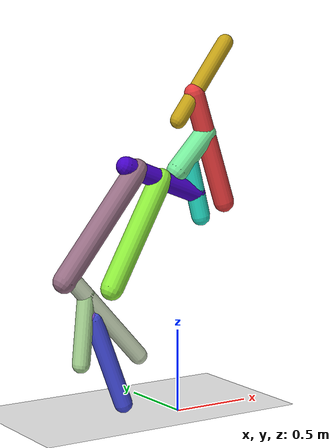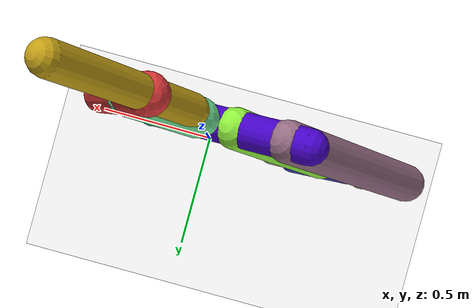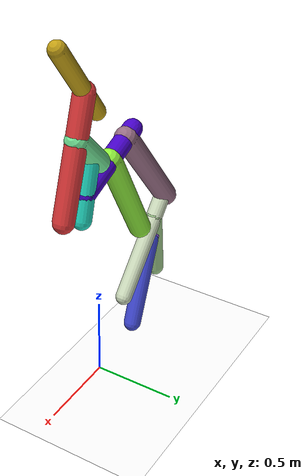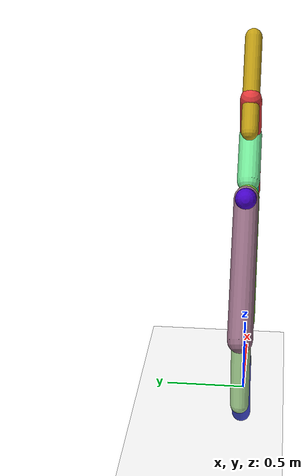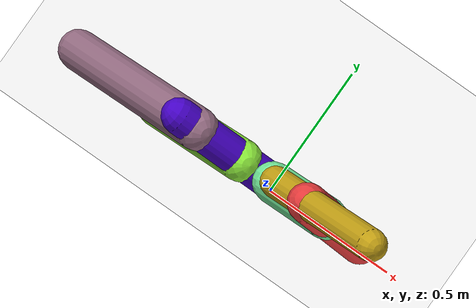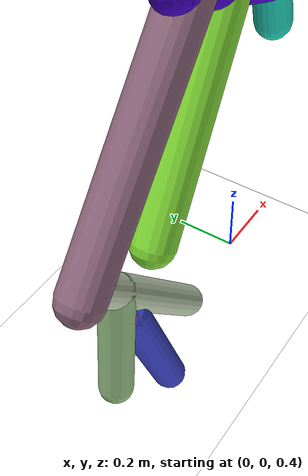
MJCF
<mujoco model="morphology">
  <option timestep="0.01"/>
  <default>
    <default class="/"/>
    <default class="0/"/>
    <default class="0/1/"/>
    <default class="0/1/2/"/>
    <default class="0/1/2/3/"/>
    <default class="0/1/2/3/4/"/>
    <default class="0/1/2/3/4/5/"/>
    <default class="0/1/2/3/4/6/"/>
    <default class="0/1/2/3/4/6/7/"/>
    <default class="0/1/2/3/4/6/7/8/"/>
    <default class="0/1/2/3/4/6/7/8/9/"/>
    <default class="0/1/2/3/4/6/7/8/9/10/"/>
  </default>
  <asset>
    <texture name="texplane" type="2d" builtin="checker" rgb1="0.10000000000000001 0.20000000000000001 0.29999999999999999" rgb2="0.20000000000000001 0.29999999999999999 0.40000000000000002" width="300" height="300"/>
    <material name="MatPlane" class="/" texture="texplane" texrepeat="20 20" specular="1" shininess="1" reflectance="0.5"/>
  </asset>
  <worldbody>
    <light name="//unnamed_light_0" class="/" directional="true" pos="0 0 1.5" dir="0 0 -1.3" cutoff="100" exponent="1" diffuse="1 1 1" specular="0.10000000000000001 0.10000000000000001 0.10000000000000001"/>
    <geom name="ground" class="/" type="plane" size="15 15 0.5" material="MatPlane" rgba="1 1 1 1"/>
    <site name="body" class="/" size="9.9999999999999995e-07 9.9999999999999995e-07 9.9999999999999995e-07" pos="0 0 1.7702007055282594"/>
    <body pos="0 0 1.7702007055282594" name="0/">
      <joint name="0/rootx/" class="/" type="slide" axis="1 0 0" limited="false" stiffness="0" armature="0" damping="0"/>
      <joint name="0/rootz/" class="/" type="slide" axis="0 0 1" limited="false" stiffness="0" armature="0" damping="0"/>
      <joint name="0/rooty/" class="/" type="hinge" axis="0 1 0" limited="false" stiffness="0" armature="0" damping="0"/>
      <geom name="0/geom" class="0/" type="capsule" contype="1" conaffinity="1" condim="3" size="0.049760105491296794" rgba="0.76395265650876476 0.62478649806144615 0.079439515522557014 1" friction="0.59999999999999998 0.10000000000000001 0.10000000000000001" fromto="0 0 0 0.33490888481965642 0 0.45470466588194913"/>
      <site name="0/end0" class="0/" size="0.0050000000000000001" pos="0.33490888481965642 0 0.45470466588194913"/>
      <site name="0/attach1" class="0/" size="9.9999999999999995e-07 9.9999999999999995e-07 9.9999999999999995e-07" pos="0.11326453954722956 0 0.15377888418466076"/>
      <body pos="0.11326453954722956 0 0.15377888418466076" name="0/1/">
        <joint name="0/1/joint/" class="0/" type="hinge" axis="0 1 0" limited="true" range="-30.345234659290938 30.345234659290938"/>
        <geom name="0/1/geom" class="0/1/" type="capsule" contype="1" conaffinity="1" condim="3" size="0.062177679534595243" rgba="0.89301078395328271 0.22906135838136799 0.23311906517545156 1" friction="0.59999999999999998 0.10000000000000001 0.10000000000000001" fromto="0 0 0 0.2209425893441519 0 -0.66403291622570504"/>
        <site name="0/1/end1" class="0/1/" size="0.0050000000000000001" pos="0.2209425893441519 0 -0.66403291622570504"/>
        <site name="0/1/attach2" class="0/1/" size="9.9999999999999995e-07 9.9999999999999995e-07 9.9999999999999995e-07" pos="0.080530485192739781 0 -0.24203071524752806"/>
        <body pos="0.080530485192739781 0 -0.24203071524752806" name="0/1/2/">
          <joint name="0/1/2/joint/" class="0/1/" type="hinge" axis="0 1 0" limited="true" range="-55.068405468197739 55.068405468197739"/>
          <geom name="0/1/2/geom" class="0/1/2/" type="capsule" contype="1" conaffinity="1" condim="3" size="0.066674188456869052" rgba="0.45538292545753012 0.9184963265691044 0.60310398099302853 1" friction="0.59999999999999998 0.10000000000000001 0.10000000000000001" fromto="0 0 0 -0.20015174838758898 0 -0.21295602309135342"/>
          <site name="0/1/2/end2" class="0/1/2/" size="0.0050000000000000001" pos="-0.20015174838758898 0 -0.21295602309135342"/>
          <site name="0/1/2/attach3" class="0/1/2/" size="9.9999999999999995e-07 9.9999999999999995e-07 9.9999999999999995e-07" pos="-0.12493396246582808 0 -0.13292634218835991"/>
          <body pos="-0.12493396246582808 0 -0.13292634218835991" name="0/1/2/3/">
            <joint name="0/1/2/3/joint/" class="0/1/2/" type="hinge" axis="0 1 0" limited="true" range="-41.510427473026041 41.510427473026041"/>
            <geom name="0/1/2/3/geom" class="0/1/2/3/" type="capsule" contype="1" conaffinity="1" condim="3" size="0.056864144718680162" rgba="0.13750303117489471 0.86627651509253711 0.77206219812396681 1" friction="0.59999999999999998 0.10000000000000001 0.10000000000000001" fromto="0 0 0 0.095191755588415083 0 -0.36396257606613086"/>
            <site name="0/1/2/3/end3" class="0/1/2/3/" size="0.0050000000000000001" pos="0.095191755588415083 0 -0.36396257606613086"/>
            <site name="0/1/2/3/attach4" class="0/1/2/3/" size="9.9999999999999995e-07 9.9999999999999995e-07 9.9999999999999995e-07" pos="0.058123193034008008 0 -0.2222321348638"/>
            <body pos="0.058123193034008008 0 -0.2222321348638" name="0/1/2/3/4/">
              <joint name="0/1/2/3/4/joint/" class="0/1/2/3/" type="hinge" axis="0 1 0" limited="true" range="-60.093106459761856 60.093106459761856"/>
              <geom name="0/1/2/3/4/geom" class="0/1/2/3/4/" type="capsule" contype="1" conaffinity="1" condim="3" size="0.058809315226498279" rgba="0.27331247689755778 0.0044377690320154262 0.78011381338160102 1" friction="0.59999999999999998 0.10000000000000001 0.10000000000000001" fromto="0 0 0 -0.49090563588854558 0 0.18867960943834172"/>
              <site name="0/1/2/3/4/end4" class="0/1/2/3/4/" size="0.0050000000000000001" pos="-0.49090563588854558 0 0.18867960943834172"/>
              <site name="0/1/2/3/4/attach5" class="0/1/2/3/4/" size="9.9999999999999995e-07 9.9999999999999995e-07 9.9999999999999995e-07" pos="-0.25272297919751857 0 0.097134091615741797"/>
              <body pos="-0.25272297919751857 0 0.097134091615741797" name="0/1/2/3/4/5/">
                <geom name="0/1/2/3/4/5/geom" class="0/1/2/3/4/5/" type="capsule" contype="1" conaffinity="1" condim="3" size="0.068717157742849949" rgba="0.55872827645924716 0.93125144174451113 0.23436743160284568 1" friction="0.59999999999999998 0.10000000000000001 0.10000000000000001" fromto="0 0 0 -0.33831210110264548 0 -0.62321794392284446"/>
                <site name="0/1/2/3/4/5/end5" class="0/1/2/3/4/5/" size="0.0050000000000000001" pos="-0.33831210110264548 0 -0.62321794392284446"/>
              </body>
              <site name="0/1/2/3/4/attach6" class="0/1/2/3/4/" size="9.9999999999999995e-07 9.9999999999999995e-07 9.9999999999999995e-07" pos="-0.42052364550163318 0 0.1616282873779229"/>
              <body pos="-0.42052364550163318 0 0.1616282873779229" name="0/1/2/3/4/6/">
                <joint name="0/1/2/3/4/6/joint/" class="0/1/2/3/4/" type="hinge" axis="0 1 0" limited="true" range="-63.955681810592154 63.955681810592154"/>
                <geom name="0/1/2/3/4/6/geom" class="0/1/2/3/4/6/" type="capsule" contype="1" conaffinity="1" condim="3" size="0.069173096933088332" rgba="0.58816585450215852 0.42628475172619351 0.5160542554559937 1" friction="0.59999999999999998 0.10000000000000001 0.10000000000000001" fromto="0 0 0 -0.48671662785618847 0 -0.61434369175874304"/>
                <site name="0/1/2/3/4/6/end6" class="0/1/2/3/4/6/" size="0.0050000000000000001" pos="-0.48671662785618847 0 -0.61434369175874304"/>
                <site name="0/1/2/3/4/6/attach7" class="0/1/2/3/4/6/" size="9.9999999999999995e-07 9.9999999999999995e-07 9.9999999999999995e-07" pos="-0.46131251228174613 0 -0.58227809700680022"/>
                <body pos="-0.46131251228174613 0 -0.58227809700680022" name="0/1/2/3/4/6/7/">
                  <geom name="0/1/2/3/4/6/7/geom" class="0/1/2/3/4/6/7/" type="capsule" contype="1" conaffinity="1" condim="3" size="0.052204478565990739" rgba="0.80252156913982164 0.86118877478968903 0.73729042413389168 1" friction="0.59999999999999998 0.10000000000000001 0.10000000000000001" fromto="0 0 0 0.47393359151634562 0 -0.52772357946607329"/>
                  <site name="0/1/2/3/4/6/7/end7" class="0/1/2/3/4/6/7/" size="0.0050000000000000001" pos="0.47393359151634562 0 -0.52772357946607329"/>
                  <site name="0/1/2/3/4/6/7/attach8" class="0/1/2/3/4/6/7/" size="9.9999999999999995e-07 9.9999999999999995e-07 9.9999999999999995e-07" pos="0.11771923731159141 0 -0.13108000445236759"/>
                  <body pos="0.11771923731159141 0 -0.13108000445236759" name="0/1/2/3/4/6/7/8/">
                    <geom name="0/1/2/3/4/6/7/8/geom" class="0/1/2/3/4/6/7/8/" type="capsule" contype="1" conaffinity="1" condim="3" size="0.05321099276240443" rgba="0.66666711658701427 0.84535925961362446 0.58568455122631924 1" friction="0.59999999999999998 0.10000000000000001 0.10000000000000001" fromto="0 0 0 -0.038007879026259905 0 -0.39931659416459525"/>
                    <site name="0/1/2/3/4/6/7/8/end8" class="0/1/2/3/4/6/7/8/" size="0.0050000000000000001" pos="-0.038007879026259905 0 -0.39931659416459525"/>
                    <site name="0/1/2/3/4/6/7/8/attach9" class="0/1/2/3/4/6/7/8/" size="9.9999999999999995e-07 9.9999999999999995e-07 9.9999999999999995e-07" pos="-0.010009009281906924 0 -0.1051561833969084"/>
                    <body pos="-0.010009009281906924 0 -0.1051561833969084" name="0/1/2/3/4/6/7/8/9/">
                      <joint name="0/1/2/3/4/6/7/8/9/joint/" class="0/1/2/3/4/6/7/8/" type="hinge" axis="0 1 0" limited="true" range="-48.801592840537879 48.801592840537879"/>
                      <geom name="0/1/2/3/4/6/7/8/9/geom" class="0/1/2/3/4/6/7/8/9/" type="capsule" contype="1" conaffinity="1" condim="3" size="0.048002354332864275" rgba="0.60688135967898671 0.36842985992579591 0.97373754575129412 1" friction="0.59999999999999998 0.10000000000000001 0.10000000000000001" fromto="0 0 0 0.055028330720209406 0 -0.032351761542690483"/>
                      <site name="0/1/2/3/4/6/7/8/9/end9" class="0/1/2/3/4/6/7/8/9/" size="0.0050000000000000001" pos="0.055028330720209406 0 -0.032351761542690483"/>
                      <site name="0/1/2/3/4/6/7/8/9/attach10" class="0/1/2/3/4/6/7/8/9/" size="9.9999999999999995e-07 9.9999999999999995e-07 9.9999999999999995e-07" pos="0.054395079258143159 0 -0.03197946603546363"/>
                      <body pos="0.054395079258143159 0 -0.03197946603546363" name="0/1/2/3/4/6/7/8/9/10/">
                        <joint name="0/1/2/3/4/6/7/8/9/10/joint/" class="0/1/2/3/4/6/7/8/9/" type="hinge" axis="0 1 0" limited="true" range="-52.974882755017269 52.974882755017269"/>
                        <geom name="0/1/2/3/4/6/7/8/9/10/geom" class="0/1/2/3/4/6/7/8/9/10/" type="capsule" contype="1" conaffinity="1" condim="3" size="0.055455526402776956" rgba="0.26934689153178881 0.30336602466071638 0.8731635217176591 1" friction="0.59999999999999998 0.10000000000000001 0.10000000000000001" fromto="0 0 0 0.2042278013252381 0 -0.53792490787038538"/>
                        <site name="0/1/2/3/4/6/7/8/9/10/end10" class="0/1/2/3/4/6/7/8/9/10/" size="0.0050000000000000001" pos="0.2042278013252381 0 -0.53792490787038538"/>
                      </body>
                    </body>
                  </body>
                </body>
              </body>
            </body>
          </body>
        </body>
      </body>
      <camera name="0/side" class="0/" mode="trackcom" pos="0.40000000000000002 -4 0.20000000000000001" quat="0.70699999999999996 0.70699999999999996 0 0"/>
    </body>
  </worldbody>
  <actuator>
    <motor name="0/1/motor" class="0/1/" ctrllimited="true" ctrlrange="-1 1" gear="59" joint="0/1/joint/"/>
    <motor name="0/1/2/motor" class="0/1/2/" ctrllimited="true" ctrlrange="-1 1" gear="76" joint="0/1/2/joint/"/>
    <motor name="0/1/2/3/motor" class="0/1/2/3/" ctrllimited="true" ctrlrange="-1 1" gear="63" joint="0/1/2/3/joint/"/>
    <motor name="0/1/2/3/4/motor" class="0/1/2/3/4/" ctrllimited="true" ctrlrange="-1 1" gear="67" joint="0/1/2/3/4/joint/"/>
    <motor name="0/1/2/3/4/6/motor" class="0/1/2/3/4/6/" ctrllimited="true" ctrlrange="-1 1" gear="67" joint="0/1/2/3/4/6/joint/"/>
    <motor name="0/1/2/3/4/6/7/8/9/motor" class="0/1/2/3/4/6/7/8/9/" ctrllimited="true" ctrlrange="-1 1" gear="70" joint="0/1/2/3/4/6/7/8/9/joint/"/>
    <motor name="0/1/2/3/4/6/7/8/9/10/motor" class="0/1/2/3/4/6/7/8/9/10/" ctrllimited="true" ctrlrange="-1 1" gear="60" joint="0/1/2/3/4/6/7/8/9/10/joint/"/>
  </actuator>
  <sensor>
    <subtreelinvel name="velocity" body="0/"/>
  </sensor>
</mujoco>
